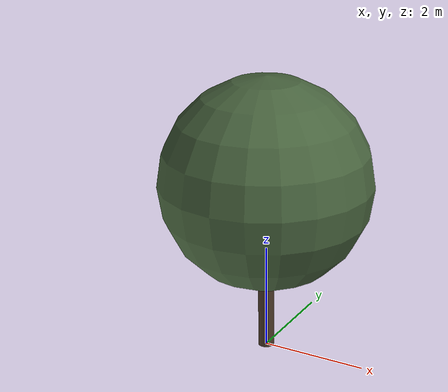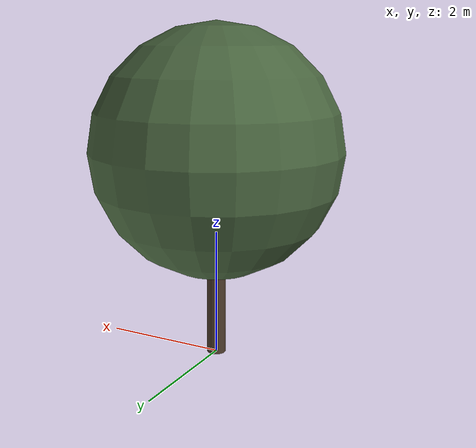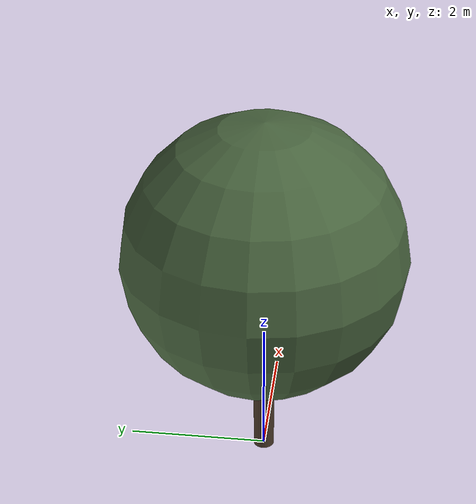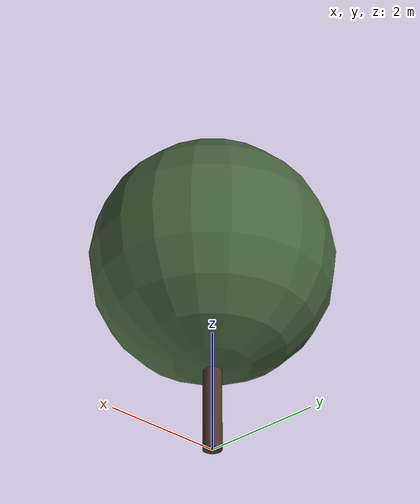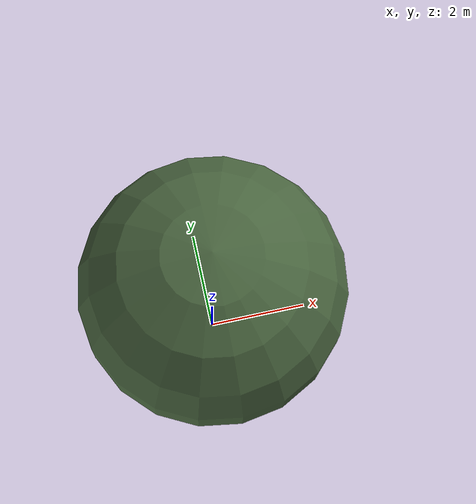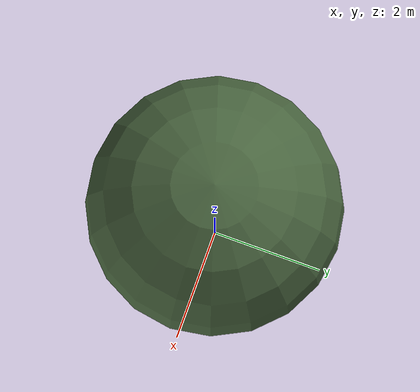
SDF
<?xml version="1.0" ?>
<sdf version="1.10">
  <model name="chene_vert_15">
    <static>true</static>

    <!-- Tronc -->
    <link name="trunk">
      <pose>0 0 1.3560101484118081 0 0 0</pose>
      <visual name="trunk_visual">
        <geometry>
          <cylinder>
            <radius>0.1498058120961982</radius>
            <length>2.7120202968236162</length>
          </cylinder>
        </geometry>
        <material>
          <ambient>0.29 0.22 0.16 1</ambient>
          <diffuse>0.29 0.22 0.16 1</diffuse>
          <specular>0.1 0.1 0.1 1</specular>
        </material>
      </visual>
      <collision name="trunk_collision">
        <geometry>
          <cylinder>
            <radius>0.1498058120961982</radius>
            <length>2.7120202968236162</length>
          </cylinder>
        </geometry>
      </collision>
    </link>

    <!-- Feuillage -->
    <link name="crown">
      <pose>0 0 3.309714296844483 0 0 0</pose>
      <visual name="crown_visual">
        <geometry>
          <sphere>
              <radius>1.9923133334028895</radius>
            </sphere>
        </geometry>
        <material>
          <ambient>0.29 0.40 0.25 1</ambient>
          <diffuse>0.29 0.40 0.25 1</diffuse>
          <specular>0.1 0.1 0.1 1</specular>
        </material>
      </visual>
      <collision name="crown_collision">
        <geometry>
          <sphere>
            <radius>1.5938506667223118</radius>
          </sphere>
        </geometry>
      </collision>
    </link>

    <!-- Joint tronc-feuillage -->
    <joint name="trunk_crown_joint" type="fixed">
      <parent>trunk</parent>
      <child>crown</child>
    </joint>

  </model>
</sdf>
